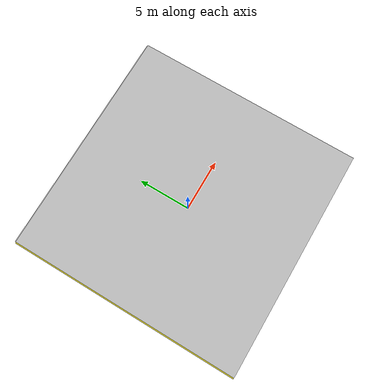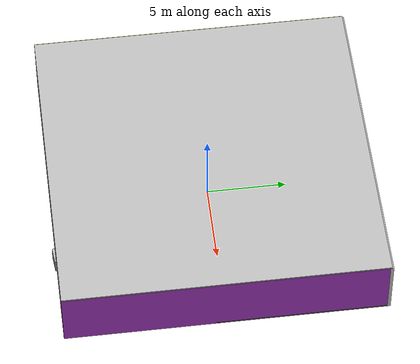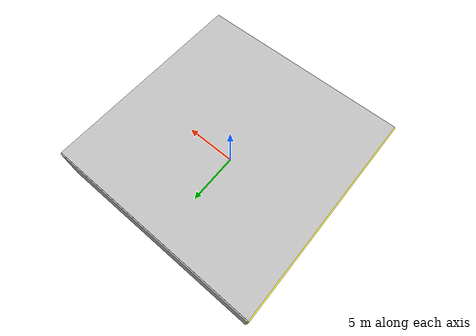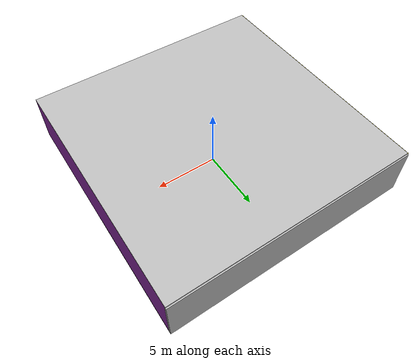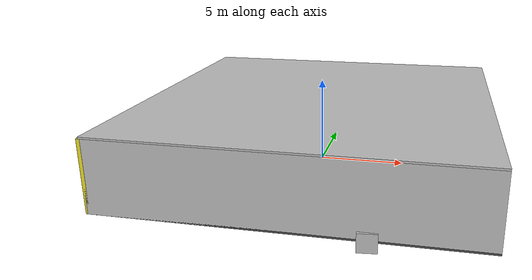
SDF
<sdf version="1.4">
 <world name="default">
  <physics type="ode">
   <max_step_size>0.001</max_step_size>
   <real_time_factor>1</real_time_factor>
   <real_time_update_rate>1000</real_time_update_rate>
   <gravity>0 0 -9.8</gravity>
  </physics>
  <scene><ambient>0.4 0.4 0.4 1</ambient><background>0.7 0.7 0.7 1</background><shadows>1</shadows></scene>
  <model name="Surrounding">
   <static>1</static>
   <link name="Ceiling">
    <collision name="Ceiling_Collision"><geometry><box><size>20 20 0.1</size></box></geometry></collision>
    <visual name="Ceiling_Visual">
     <geometry><box><size>20 20 0.1</size></box></geometry>
     <material>
      <script><uri>file://media/materials/scripts/gazebo.material</uri><name>Gazebo/Pioneer2Body</name></script>
     </material>
    </visual>
    <pose>0 0 4.05 0 0 0</pose>
   </link>
   <link name="Wall_South">
    <collision name="Wall_South_Collision">
     <geometry><box><size>20 0 4</size></box></geometry>
     <pose>0 0 2 0 -0 0</pose>
    </collision>
    <visual name="Wall_South_Visual">
     <pose>0 0 2 0 -0 0</pose>
     <geometry><box><size>20 0 4</size></box></geometry>
     <material>
      <script><uri>file://media/materials/scripts/gazebo.material</uri><name>Gazebo/Pioneer2Body</name></script>
     </material>
    </visual>
    <velocity_decay><linear>0</linear><angular>0</angular></velocity_decay>
    <pose>0 -10 0 0 -0 0</pose>
   </link>
   <link name="Wall_East">
    <collision name="Wall_21_Collision">
     <geometry><box><size>20 0 4</size></box></geometry>
     <pose>0 0 2 0 -0 0</pose>
    </collision>
    <visual name="Wall_21_Visual">
     <pose>0 0 2 0 -0 0</pose>
     <geometry><box><size>20 0 4</size></box></geometry>
     <material>
      <script><uri>file://media/materials/scripts/gazebo.material</uri><name>Gazebo/Purple</name></script>
     </material>
    </visual>
    <velocity_decay><linear>0</linear><angular>0</angular></velocity_decay>
    <pose>10 0 0 0 -0 1.5708</pose>
   </link>
   <link name="Wall_North">
    <collision name="Wall_22_Collision">
     <geometry><box><size>20 0.2 4</size></box></geometry>
     <pose>0 0 2 0 -0 0</pose>
    </collision>
    <visual name="Wall_22_Visual">
     <pose>0 0 2 0 -0 0</pose>
     <geometry><box><size>20 0.2 4</size></box></geometry>
     <material>
      <script><uri>file://media/materials/scripts/gazebo.material</uri><name>Gazebo/CloudySky</name></script>
     </material>
    </visual>
    <velocity_decay><linear>0</linear><angular>0</angular></velocity_decay>
    <pose>0 10 0 0 -0 0</pose>
   </link>
   <link name="Wall_West">
    <collision name="Wall_23_Collision">
     <geometry><box><size>20 0.2 4</size></box></geometry>
     <pose>0 0 2 0 -0 0</pose>
    </collision>
    <visual name="Wall_23_Visual">
     <pose>0 0 2 0 -0 0</pose>
     <geometry><box><size>20 0.2 4</size></box></geometry>
     <material>
      <script><uri>file://media/materials/scripts/gazebo.material</uri><name>Gazebo/Yellow</name></script>
     </material>
    </visual>
    <velocity_decay><linear>0</linear><angular>0</angular></velocity_decay>
    <pose>-10 0 0 0 0 -1.5708</pose>
   </link>
   <link name="Ground_link">
    <collision name="collision">
     <pose>0 0 .05 0 -0 0</pose>
     <geometry><box><size>20 20 0.1</size></box></geometry>
    </collision>
    <visual name="visual">
     <pose>0 0 .05 0 -0 0</pose>
     <geometry><box><size>20 20 0.1</size></box></geometry>
     <material>
      <script><uri>file://media/materials/scripts/gazebo.material</uri><name>Gazebo/DarkGrey</name></script>
     </material>
    </visual>
   </link>
   <static>1</static>
  </model>
  <spherical_coordinates>
   <surface_model>EARTH_WGS84</surface_model>
   <latitude_deg>0</latitude_deg>
   <longitude_deg>0</longitude_deg>
   <elevation>0</elevation>
   <heading_deg>0</heading_deg>
  </spherical_coordinates>
  <light name="lightball_0" type="diffuse">
   <diffuse>0.8 0.8 0.8 1</diffuse>
   <specular>0.2 0.2 0.2 1</specular>
   <attenuation>
    <range>100</range>
    <constant>0.7</constant>
    <linear>0.01</linear>
    <quadratic>0.001</quadratic>
   </attenuation>
   <direction>-0.5 0.1 -0.9</direction>
   <pose>-9.60945103902 -4.79790733902 2.27842466356 0 0 0</pose>
  </light>
  <include>
   <uri>model://textured_shapes</uri>
   <pose>-4.97575103503 -4.19744709724 0 0 0 0.569314468361</pose>
  </include>
  <include>
   <uri>model://textured_shapes</uri>
   <pose>3.89669603088 -8.13810419976 0 0 0 0.102637417917</pose>
  </include>
  <include>
   <uri>model://textured_shapes</uri>
   <pose>3.74516780153 -5.14675943621 0 0 0 0.797611341903</pose>
  </include>
 </world>
</sdf>

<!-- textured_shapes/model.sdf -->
<sdf version="1.6">
  <model name="textured_shapes">
    <pose>0 0 0.5 0 0 0</pose>
    <link name="box">
      <pose>0 -1.5 0 0 0 0</pose>
      <collision name="collision">
        <geometry>
          <box>
            <size>1 1 1</size>
          </box>
        </geometry>
      </collision>
      <visual name="visual">
        <geometry>
          <box>
            <size>1 1 1</size>
          </box>
        </geometry>
        <material>
          <script>
            <uri>model://../model_source/models/textured_shapes/materials/scripts</uri>
            <uri>model://../model_source/models/textured_shapes/materials/textures</uri>
            <name>TexturedShape/Squares</name>
          </script>
        </material>
      </visual>
    </link>
    <link name="sphere">
      <collision name="collision">
        <geometry>
          <sphere>
            <radius>0.5</radius>
          </sphere>
        </geometry>
      </collision>
      <visual name="visual">
        <geometry>
          <sphere>
            <radius>0.5</radius>
          </sphere>
        </geometry>
        <material>
          <script>
            <uri>model://../model_source/models/textured_shapes/materials/scripts</uri>
            <uri>model://../model_source/models/textured_shapes/materials/textures</uri>
            <name>TexturedShape/Squares</name>
          </script>
        </material>
      </visual>
    </link>
    <link name="cylinder">
      <pose>0 1.5 0 0 0 0</pose>
      <collision name="collision">
        <geometry>
          <cylinder>
            <radius>0.5</radius>
            <length>1</length>
          </cylinder>
        </geometry>
      </collision>
      <visual name="visual">
        <geometry>
          <cylinder>
            <radius>0.5</radius>
            <length>1</length>
          </cylinder>
        </geometry>
        <material>
          <script>
            <uri>model://../model_source/models/textured_shapes/materials/scripts</uri>
            <uri>model://../model_source/models/textured_shapes/materials/textures</uri>
            <name>TexturedShape/Squares</name>
          </script>
        </material>
      </visual>
    </link>
  </model>
</sdf>
